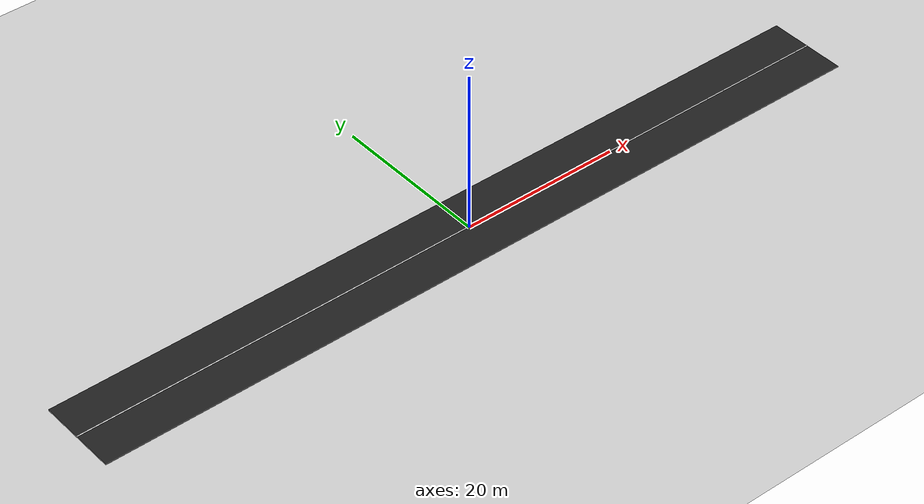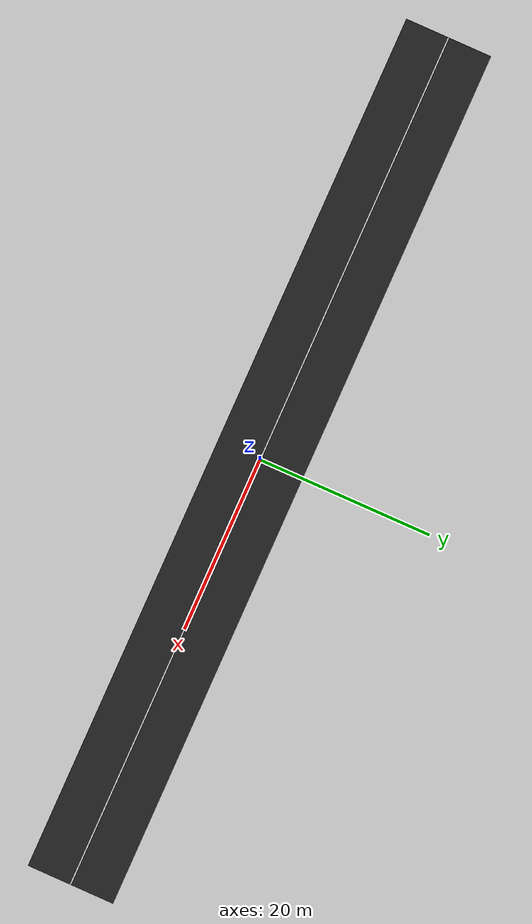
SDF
<?xml version="1.0"?>
<sdf version="1.6">
  <world name="airport_runway">

    <!-- Sun for lighting -->
    <include>
      <uri>model://sun</uri>
    </include>

    <!-- Ground Plane -->
    <include>
      <uri>model://ground_plane</uri>
    </include>

    <!-- Runway (Black with White Stripes) -->
    <model name="runway">
      <static>true</static>
      <link name="runway_link">
        <collision name="runway_collision">
          <geometry>
            <box>
              <size>100 10 0.1</size>  <!-- Length 100m, Width 10m, Thickness 0.1m -->
            </box>
          </geometry>
        </collision>
        <visual name="runway_visual">
          <geometry>
            <box>
              <size>100 10 0.1</size>  <!-- Same size as collision -->
            </box>
          </geometry>
          <material>
            <script>
              <uri>file://media/materials/scripts/gazebo.material</uri>
              <name>Gazebo/Black</name>
            </script>
          </material>
        </visual>
      </link>
    </model>

    <!-- White Stripes (Placed Manually) -->
    <model name="white_stripe">
      <static>true</static>
      <pose>0 0 0.06 0 0 0</pose>
      <link name="stripe_link">
        <visual name="stripe_visual">
          <geometry>
            <box>
              <size>100 0.15 0.02</size>  <!-- Length 60cm, Width 15cm, Thickness 2cm -->
            </box>
          </geometry>
          <material>
            <script>
              <uri>file://media/materials/scripts/gazebo.material</uri>
              <name>Gazebo/White</name>
            </script>
          </material>
        </visual>
      </link>
    </model>

  </world>
</sdf>
